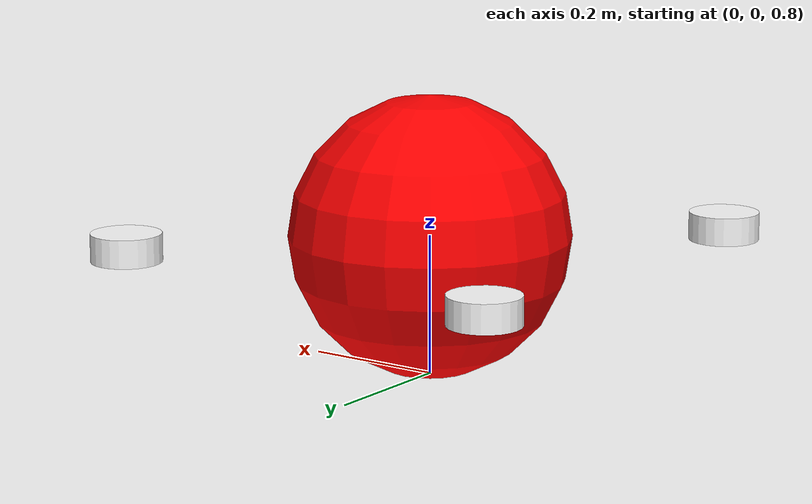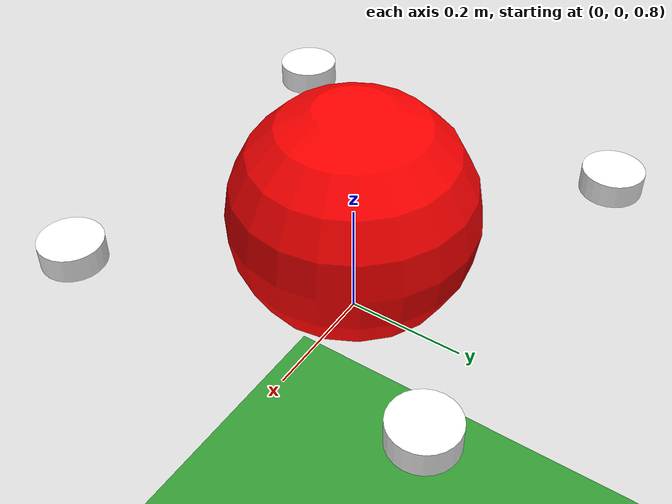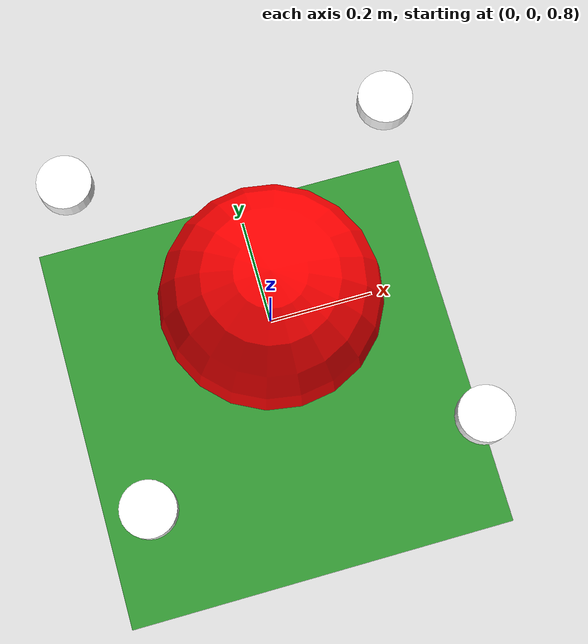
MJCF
<mujoco>
    <worldbody>
        <!-- Ground Plane -->
        <geom name="ground" type="plane" size="10 10 0.1" rgba="0.2 0.6 0.2 1"/>

        <!-- Hexacopter Body -->
        <body name="hexacopter" pos="0 0 1">
            <joint type="free"/>
            <geom type="sphere" size="0.2" rgba="1 0 0 1"/>

            <!-- Rotors -->
            <body name="rotor1" pos="0.3 0.3 0">
                <joint name="motor1" type="hinge" axis="0 0 1"/>
                <geom type="cylinder" size="0.05 0.02" rgba="1 1 1 1"/>
            </body>
            <body name="rotor2" pos="-0.3 0.3 0">
                <joint name="motor2" type="hinge" axis="0 0 1"/>
                <geom type="cylinder" size="0.05 0.02" rgba="1 1 1 1"/>
            </body>
            <body name="rotor3" pos="0.3 -0.3 0">
                <joint name="motor3" type="hinge" axis="0 0 1"/>
                <geom type="cylinder" size="0.05 0.02" rgba="1 1 1 1"/>
            </body>
            <body name="rotor4" pos="-0.3 -0.3 0">
                <joint name="motor4" type="hinge" axis="0 0 1"/>
                <geom type="cylinder" size="0.05 0.02" rgba="1 1 1 1"/>
            </body>
        </body>
    </worldbody>

    <!-- Move actuators here -->
    <actuator>
        <motor joint="motor1" ctrlrange="-1 1"/>
        <motor joint="motor2" ctrlrange="-1 1"/>
        <motor joint="motor3" ctrlrange="-1 1"/>
        <motor joint="motor4" ctrlrange="-1 1"/>
    </actuator>
</mujoco>
